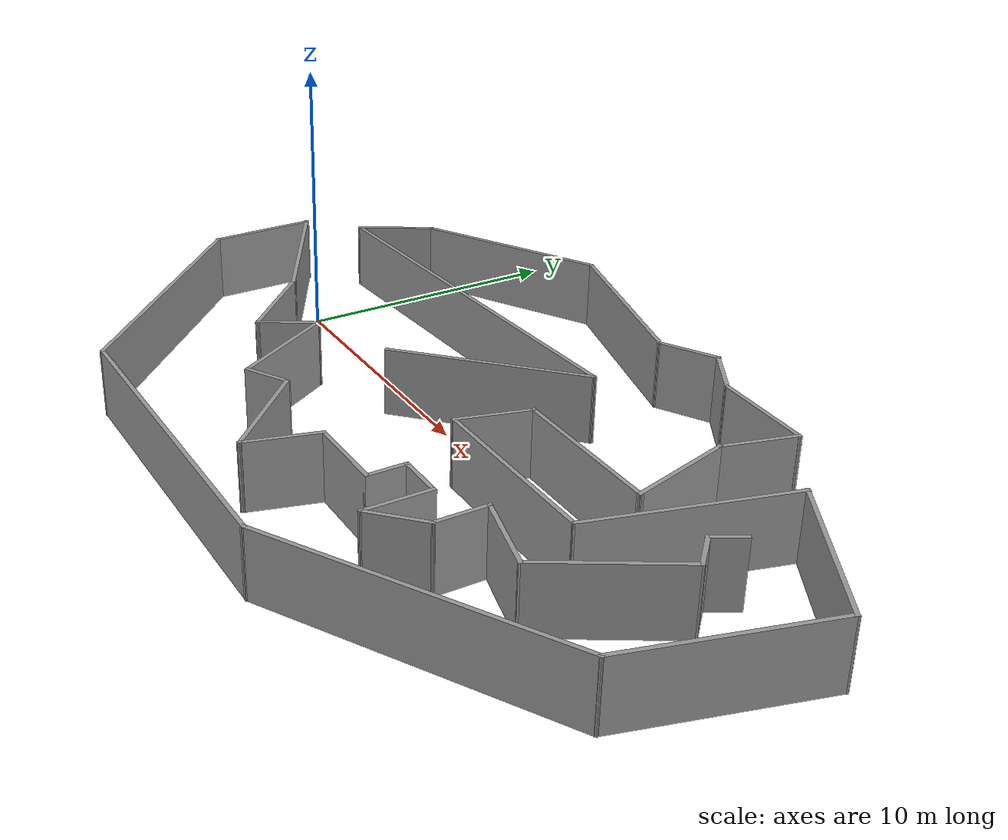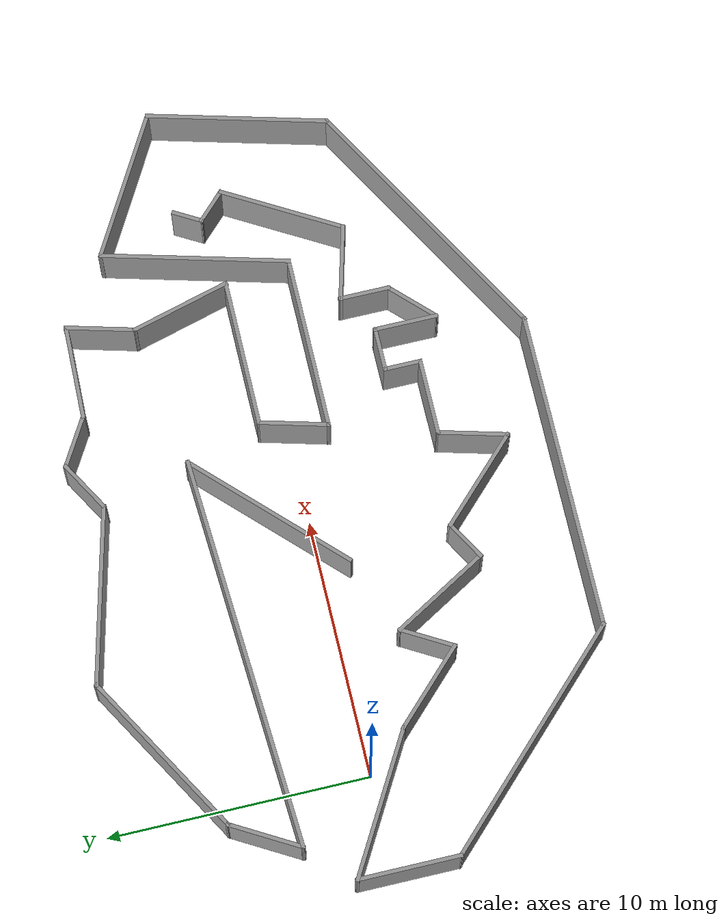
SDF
<?xml version='1.0'?>
<sdf version='1.7'>
  <model name='test1'>
    <pose>11.2206 -0.21406 0 0 -0 0</pose>
    <link name='Wall_10'>
      <collision name='Wall_10_Collision'>
        <geometry>
          <box>
            <size>2.17906 0.15 2.5</size>
          </box>
        </geometry>
        <pose>0 0 1.25 0 -0 0</pose>
      </collision>
      <visual name='Wall_10_Visual'>
        <pose>0 0 1.25 0 -0 0</pose>
        <geometry>
          <box>
            <size>2.17906 0.15 2.5</size>
          </box>
        </geometry>
        <material>
          <script>
            <uri>file://media/materials/scripts/gazebo.material</uri>
            <name>Gazebo/Grey</name>
          </script>
          <ambient>1 1 1 1</ambient>
        </material>
        <meta>
          <layer>0</layer>
        </meta>
      </visual>
      <pose>3.24071 8.14976 0 0 -0 -0.539218</pose>
    </link>
    <link name='Wall_11'>
      <collision name='Wall_11_Collision'>
        <geometry>
          <box>
            <size>3.69325 0.15 2.5</size>
          </box>
        </geometry>
        <pose>0 0 1.25 0 -0 0</pose>
      </collision>
      <visual name='Wall_11_Visual'>
        <pose>0 0 1.25 0 -0 0</pose>
        <geometry>
          <box>
            <size>3.69325 0.15 2.5</size>
          </box>
        </geometry>
        <material>
          <script>
            <uri>file://media/materials/scripts/gazebo.material</uri>
            <name>Gazebo/Grey</name>
          </script>
          <ambient>1 1 1 1</ambient>
        </material>
        <meta>
          <layer>0</layer>
        </meta>
      </visual>
      <pose>5.88208 7.57476 0 0 -0 -0.030527</pose>
    </link>
    <link name='Wall_13'>
      <collision name='Wall_13_Collision'>
        <geometry>
          <box>
            <size>2.75 0.15 2.5</size>
          </box>
        </geometry>
        <pose>0 0 1.25 0 -0 0</pose>
      </collision>
      <visual name='Wall_13_Visual'>
        <pose>0 0 1.25 0 -0 0</pose>
        <geometry>
          <box>
            <size>2.75 0.15 2.5</size>
          </box>
        </geometry>
        <material>
          <script>
            <uri>file://media/materials/scripts/gazebo.material</uri>
            <name>Gazebo/Grey</name>
          </script>
          <ambient>1 1 1 1</ambient>
        </material>
        <meta>
          <layer>0</layer>
        </meta>
      </visual>
      <pose>7.31642 6.26499 0 0 -0 -1.8326</pose>
    </link>
    <link name='Wall_14'>
      <collision name='Wall_14_Collision'>
        <geometry>
          <box>
            <size>4 0.15 2.5</size>
          </box>
        </geometry>
        <pose>0 0 1.25 0 -0 0</pose>
      </collision>
      <visual name='Wall_14_Visual'>
        <pose>0 0 1.25 0 -0 0</pose>
        <geometry>
          <box>
            <size>4 0.15 2.5</size>
          </box>
        </geometry>
        <material>
          <script>
            <uri>file://media/materials/scripts/gazebo.material</uri>
            <name>Gazebo/Grey</name>
          </script>
          <ambient>1 1 1 1</ambient>
        </material>
        <meta>
          <layer>0</layer>
        </meta>
      </visual>
      <pose>7.47818 3.14987 0 0 -0 -1.309</pose>
    </link>
    <link name='Wall_15'>
      <collision name='Wall_15_Collision'>
        <geometry>
          <box>
            <size>5.75 0.15 2.5</size>
          </box>
        </geometry>
        <pose>0 0 1.25 0 -0 0</pose>
      </collision>
      <visual name='Wall_15_Visual'>
        <pose>0 0 1.25 0 -0 0</pose>
        <geometry>
          <box>
            <size>5.75 0.15 2.5</size>
          </box>
        </geometry>
        <material>
          <script>
            <uri>file://media/materials/scripts/gazebo.material</uri>
            <name>Gazebo/Grey</name>
          </script>
          <ambient>1 1 1 1</ambient>
        </material>
        <meta>
          <layer>0</layer>
        </meta>
      </visual>
      <pose>5.1764 1.29047 0 0 -0 3.14159</pose>
    </link>
    <link name='Wall_16'>
      <collision name='Wall_16_Collision'>
        <geometry>
          <box>
            <size>2.75 0.15 2.5</size>
          </box>
        </geometry>
        <pose>0 0 1.25 0 -0 0</pose>
      </collision>
      <visual name='Wall_16_Visual'>
        <pose>0 0 1.25 0 -0 0</pose>
        <geometry>
          <box>
            <size>2.75 0.15 2.5</size>
          </box>
        </geometry>
        <material>
          <script>
            <uri>file://media/materials/scripts/gazebo.material</uri>
            <name>Gazebo/Grey</name>
          </script>
          <ambient>1 1 1 1</ambient>
        </material>
        <meta>
          <layer>0</layer>
        </meta>
      </visual>
      <pose>2.03994 0.034763 0 0 -0 -1.8326</pose>
    </link>
    <link name='Wall_17'>
      <collision name='Wall_17_Collision'>
        <geometry>
          <box>
            <size>6.75 0.15 2.5</size>
          </box>
        </geometry>
        <pose>0 0 1.25 0 -0 0</pose>
      </collision>
      <visual name='Wall_17_Visual'>
        <pose>0 0 1.25 0 -0 0</pose>
        <geometry>
          <box>
            <size>6.75 0.15 2.5</size>
          </box>
        </geometry>
        <material>
          <script>
            <uri>file://media/materials/scripts/gazebo.material</uri>
            <name>Gazebo/Grey</name>
          </script>
          <ambient>1 1 1 1</ambient>
        </material>
        <meta>
          <layer>0</layer>
        </meta>
      </visual>
      <pose>5.00348 -1.22094 0 0 -0 0</pose>
    </link>
    <link name='Wall_18'>
      <collision name='Wall_18_Collision'>
        <geometry>
          <box>
            <size>7.25 0.15 2.5</size>
          </box>
        </geometry>
        <pose>0 0 1.25 0 -0 0</pose>
      </collision>
      <visual name='Wall_18_Visual'>
        <pose>0 0 1.25 0 -0 0</pose>
        <geometry>
          <box>
            <size>7.25 0.15 2.5</size>
          </box>
        </geometry>
        <material>
          <script>
            <uri>file://media/materials/scripts/gazebo.material</uri>
            <name>Gazebo/Grey</name>
          </script>
          <ambient>1 1 1 1</ambient>
        </material>
        <meta>
          <layer>0</layer>
        </meta>
      </visual>
      <pose>9.22228 2.2081 0 0 -0 1.309</pose>
    </link>
    <link name='Wall_19'>
      <collision name='Wall_19_Collision'>
        <geometry>
          <box>
            <size>6 0.15 2.5</size>
          </box>
        </geometry>
        <pose>0 0 1.25 0 -0 0</pose>
      </collision>
      <visual name='Wall_19_Visual'>
        <pose>0 0 1.25 0 -0 0</pose>
        <geometry>
          <box>
            <size>6 0.15 2.5</size>
          </box>
        </geometry>
        <material>
          <script>
            <uri>file://media/materials/scripts/gazebo.material</uri>
            <name>Gazebo/Grey</name>
          </script>
          <ambient>1 1 1 1</ambient>
        </material>
        <meta>
          <layer>0</layer>
        </meta>
      </visual>
      <pose>12.6742 4.17463 0 0 -0 -0.523599</pose>
    </link>
    <link name='Wall_20'>
      <collision name='Wall_20_Collision'>
        <geometry>
          <box>
            <size>7 0.15 2.5</size>
          </box>
        </geometry>
        <pose>0 0 1.25 0 -0 0</pose>
      </collision>
      <visual name='Wall_20_Visual'>
        <pose>0 0 1.25 0 -0 0</pose>
        <geometry>
          <box>
            <size>7 0.15 2.5</size>
          </box>
        </geometry>
        <material>
          <script>
            <uri>file://media/materials/scripts/gazebo.material</uri>
            <name>Gazebo/Grey</name>
          </script>
          <ambient>1 1 1 1</ambient>
        </material>
        <meta>
          <layer>0</layer>
        </meta>
      </visual>
      <pose>14.3209 -0.596163 0 0 -0 -1.8326</pose>
    </link>
    <link name='Wall_21'>
      <collision name='Wall_21_Collision'>
        <geometry>
          <box>
            <size>11 0.15 2.5</size>
          </box>
        </geometry>
        <pose>0 0 1.25 0 -0 0</pose>
      </collision>
      <visual name='Wall_21_Visual'>
        <pose>0 0 1.25 0 -0 0</pose>
        <geometry>
          <box>
            <size>11 0.15 2.5</size>
          </box>
        </geometry>
        <material>
          <script>
            <uri>file://media/materials/scripts/gazebo.material</uri>
            <name>Gazebo/Grey</name>
          </script>
          <ambient>1 1 1 1</ambient>
        </material>
        <meta>
          <layer>0</layer>
        </meta>
      </visual>
      <pose>8.73624 -6.61696 0 0 -0 -2.61799</pose>
    </link>
    <link name='Wall_22'>
      <collision name='Wall_22_Collision'>
        <geometry>
          <box>
            <size>12.25 0.15 2.5</size>
          </box>
        </geometry>
        <pose>0 0 1.25 0 -0 0</pose>
      </collision>
      <visual name='Wall_22_Visual'>
        <pose>0 0 1.25 0 -0 0</pose>
        <geometry>
          <box>
            <size>12.25 0.15 2.5</size>
          </box>
        </geometry>
        <material>
          <script>
            <uri>file://media/materials/scripts/gazebo.material</uri>
            <name>Gazebo/Grey</name>
          </script>
          <ambient>1 1 1 1</ambient>
        </material>
        <meta>
          <layer>0</layer>
        </meta>
      </visual>
      <pose>-2.01195 -9.32946 0 0 -0 3.14159</pose>
    </link>
    <link name='Wall_23'>
      <collision name='Wall_23_Collision'>
        <geometry>
          <box>
            <size>10.25 0.15 2.5</size>
          </box>
        </geometry>
        <pose>0 0 1.25 0 -0 0</pose>
      </collision>
      <visual name='Wall_23_Visual'>
        <pose>0 0 1.25 0 -0 0</pose>
        <geometry>
          <box>
            <size>10.25 0.15 2.5</size>
          </box>
        </geometry>
        <material>
          <script>
            <uri>file://media/materials/scripts/gazebo.material</uri>
            <name>Gazebo/Grey</name>
          </script>
          <ambient>1 1 1 1</ambient>
        </material>
        <meta>
          <layer>0</layer>
        </meta>
      </visual>
      <pose>-11.6328 -5.75857 0 0 -0 2.35619</pose>
    </link>
    <link name='Wall_24'>
      <collision name='Wall_24_Collision'>
        <geometry>
          <box>
            <size>4 0.15 2.5</size>
          </box>
        </geometry>
        <pose>0 0 1.25 0 -0 0</pose>
      </collision>
      <visual name='Wall_24_Visual'>
        <pose>0 0 1.25 0 -0 0</pose>
        <geometry>
          <box>
            <size>4 0.15 2.5</size>
          </box>
        </geometry>
        <material>
          <script>
            <uri>file://media/materials/scripts/gazebo.material</uri>
            <name>Gazebo/Grey</name>
          </script>
          <ambient>1 1 1 1</ambient>
        </material>
        <meta>
          <layer>0</layer>
        </meta>
      </visual>
      <pose>-15.2037 -0.26268 0 0 -0 1.5708</pose>
    </link>
    <link name='Wall_25'>
      <collision name='Wall_25_Collision'>
        <geometry>
          <box>
            <size>6 0.15 2.5</size>
          </box>
        </geometry>
        <pose>0 0 1.25 0 -0 0</pose>
      </collision>
      <visual name='Wall_25_Visual'>
        <pose>0 0 1.25 0 -0 0</pose>
        <geometry>
          <box>
            <size>6 0.15 2.5</size>
          </box>
        </geometry>
        <material>
          <script>
            <uri>file://media/materials/scripts/gazebo.material</uri>
            <name>Gazebo/Grey</name>
          </script>
          <ambient>1 1 1 1</ambient>
        </material>
        <meta>
          <layer>0</layer>
        </meta>
      </visual>
      <pose>-12.6706 0.19982 0 0 -0 -0.523599</pose>
    </link>
    <link name='Wall_26'>
      <collision name='Wall_26_Collision'>
        <geometry>
          <box>
            <size>3.75 0.15 2.5</size>
          </box>
        </geometry>
        <pose>0 0 1.25 0 -0 0</pose>
      </collision>
      <visual name='Wall_26_Visual'>
        <pose>0 0 1.25 0 -0 0</pose>
        <geometry>
          <box>
            <size>3.75 0.15 2.5</size>
          </box>
        </geometry>
        <material>
          <script>
            <uri>file://media/materials/scripts/gazebo.material</uri>
            <name>Gazebo/Grey</name>
          </script>
          <ambient>1 1 1 1</ambient>
        </material>
        <meta>
          <layer>0</layer>
        </meta>
      </visual>
      <pose>-8.86468 -2.53547 0 0 -0 -0.785398</pose>
    </link>
    <link name='Wall_27'>
      <collision name='Wall_27_Collision'>
        <geometry>
          <box>
            <size>2.25 0.15 2.5</size>
          </box>
        </geometry>
        <pose>0 0 1.25 0 -0 0</pose>
      </collision>
      <visual name='Wall_27_Visual'>
        <pose>0 0 1.25 0 -0 0</pose>
        <geometry>
          <box>
            <size>2.25 0.15 2.5</size>
          </box>
        </geometry>
        <material>
          <script>
            <uri>file://media/materials/scripts/gazebo.material</uri>
            <name>Gazebo/Grey</name>
          </script>
          <ambient>1 1 1 1</ambient>
        </material>
        <meta>
          <layer>0</layer>
        </meta>
      </visual>
      <pose>-7.06689 -2.89894 0 0 -0 1.0472</pose>
    </link>
    <link name='Wall_28'>
      <collision name='Wall_28_Collision'>
        <geometry>
          <box>
            <size>4.25 0.15 2.5</size>
          </box>
        </geometry>
        <pose>0 0 1.25 0 -0 0</pose>
      </collision>
      <visual name='Wall_28_Visual'>
        <pose>0 0 1.25 0 -0 0</pose>
        <geometry>
          <box>
            <size>4.25 0.15 2.5</size>
          </box>
        </geometry>
        <material>
          <script>
            <uri>file://media/materials/scripts/gazebo.material</uri>
            <name>Gazebo/Grey</name>
          </script>
          <ambient>1 1 1 1</ambient>
        </material>
        <meta>
          <layer>0</layer>
        </meta>
      </visual>
      <pose>-5.51689 -3.76496 0 0 -0 -1.0472</pose>
    </link>
    <link name='Wall_29'>
      <collision name='Wall_29_Collision'>
        <geometry>
          <box>
            <size>1.75 0.15 2.5</size>
          </box>
        </geometry>
        <pose>0 0 1.25 0 -0 0</pose>
      </collision>
      <visual name='Wall_29_Visual'>
        <pose>0 0 1.25 0 -0 0</pose>
        <geometry>
          <box>
            <size>1.75 0.15 2.5</size>
          </box>
        </geometry>
        <material>
          <script>
            <uri>file://media/materials/scripts/gazebo.material</uri>
            <name>Gazebo/Grey</name>
          </script>
          <ambient>1 1 1 1</ambient>
        </material>
        <meta>
          <layer>0</layer>
        </meta>
      </visual>
      <pose>-3.79907 -5.14032 0 0 -0 0.523599</pose>
    </link>
    <link name='Wall_30'>
      <collision name='Wall_30_Collision'>
        <geometry>
          <box>
            <size>4.25 0.15 2.5</size>
          </box>
        </geometry>
        <pose>0 0 1.25 0 -0 0</pose>
      </collision>
      <visual name='Wall_30_Visual'>
        <pose>0 0 1.25 0 -0 0</pose>
        <geometry>
          <box>
            <size>4.25 0.15 2.5</size>
          </box>
        </geometry>
        <material>
          <script>
            <uri>file://media/materials/scripts/gazebo.material</uri>
            <name>Gazebo/Grey</name>
          </script>
          <ambient>1 1 1 1</ambient>
        </material>
        <meta>
          <layer>0</layer>
        </meta>
      </visual>
      <pose>-1.65668 -6.18989 0 0 -0 -0.785398</pose>
    </link>
    <link name='Wall_31'>
      <collision name='Wall_31_Collision'>
        <geometry>
          <box>
            <size>2.75 0.15 2.5</size>
          </box>
        </geometry>
        <pose>0 0 1.25 0 -0 0</pose>
      </collision>
      <visual name='Wall_31_Visual'>
        <pose>0 0 1.25 0 -0 0</pose>
        <geometry>
          <box>
            <size>2.75 0.15 2.5</size>
          </box>
        </geometry>
        <material>
          <script>
            <uri>file://media/materials/scripts/gazebo.material</uri>
            <name>Gazebo/Grey</name>
          </script>
          <ambient>1 1 1 1</ambient>
        </material>
        <meta>
          <layer>0</layer>
        </meta>
      </visual>
      <pose>0.129352 -6.38375 0 0 -0 1.309</pose>
    </link>
    <link name='Wall_32'>
      <collision name='Wall_32_Collision'>
        <geometry>
          <box>
            <size>3 0.15 2.5</size>
          </box>
        </geometry>
        <pose>0 0 1.25 0 -0 0</pose>
      </collision>
      <visual name='Wall_32_Visual'>
        <pose>0 0 1.25 0 -0 0</pose>
        <geometry>
          <box>
            <size>3 0.15 2.5</size>
          </box>
        </geometry>
        <material>
          <script>
            <uri>file://media/materials/scripts/gazebo.material</uri>
            <name>Gazebo/Grey</name>
          </script>
          <ambient>1 1 1 1</ambient>
        </material>
        <meta>
          <layer>0</layer>
        </meta>
      </visual>
      <pose>1.89082 -5.12805 0 0 -0 0</pose>
    </link>
    <link name='Wall_33'>
      <collision name='Wall_33_Collision'>
        <geometry>
          <box>
            <size>1.5 0.15 2.5</size>
          </box>
        </geometry>
        <pose>0 0 1.25 0 -0 0</pose>
      </collision>
      <visual name='Wall_33_Visual'>
        <pose>0 0 1.25 0 -0 0</pose>
        <geometry>
          <box>
            <size>1.5 0.15 2.5</size>
          </box>
        </geometry>
        <material>
          <script>
            <uri>file://media/materials/scripts/gazebo.material</uri>
            <name>Gazebo/Grey</name>
          </script>
          <ambient>1 1 1 1</ambient>
        </material>
        <meta>
          <layer>0</layer>
        </meta>
      </visual>
      <pose>3.31582 -4.45305 0 0 -0 1.5708</pose>
    </link>
    <link name='Wall_34'>
      <collision name='Wall_34_Collision'>
        <geometry>
          <box>
            <size>1.75 0.15 2.5</size>
          </box>
        </geometry>
        <pose>0 0 1.25 0 -0 0</pose>
      </collision>
      <visual name='Wall_34_Visual'>
        <pose>0 0 1.25 0 -0 0</pose>
        <geometry>
          <box>
            <size>1.75 0.15 2.5</size>
          </box>
        </geometry>
        <material>
          <script>
            <uri>file://media/materials/scripts/gazebo.material</uri>
            <name>Gazebo/Grey</name>
          </script>
          <ambient>1 1 1 1</ambient>
        </material>
        <meta>
          <layer>0</layer>
        </meta>
      </visual>
      <pose>4.11582 -3.77805 0 0 -0 0</pose>
    </link>
    <link name='Wall_35'>
      <collision name='Wall_35_Collision'>
        <geometry>
          <box>
            <size>2.5 0.15 2.5</size>
          </box>
        </geometry>
        <pose>0 0 1.25 0 -0 0</pose>
      </collision>
      <visual name='Wall_35_Visual'>
        <pose>0 0 1.25 0 -0 0</pose>
        <geometry>
          <box>
            <size>2.5 0.15 2.5</size>
          </box>
        </geometry>
        <material>
          <script>
            <uri>file://media/materials/scripts/gazebo.material</uri>
            <name>Gazebo/Grey</name>
          </script>
          <ambient>1 1 1 1</ambient>
        </material>
        <meta>
          <layer>0</layer>
        </meta>
      </visual>
      <pose>4.91582 -4.95305 0 0 -0 -1.5708</pose>
    </link>
    <link name='Wall_36'>
      <collision name='Wall_36_Collision'>
        <geometry>
          <box>
            <size>2.25 0.15 2.5</size>
          </box>
        </geometry>
        <pose>0 0 1.25 0 -0 0</pose>
      </collision>
      <visual name='Wall_36_Visual'>
        <pose>0 0 1.25 0 -0 0</pose>
        <geometry>
          <box>
            <size>2.25 0.15 2.5</size>
          </box>
        </geometry>
        <material>
          <script>
            <uri>file://media/materials/scripts/gazebo.material</uri>
            <name>Gazebo/Grey</name>
          </script>
          <ambient>1 1 1 1</ambient>
        </material>
        <meta>
          <layer>0</layer>
        </meta>
      </visual>
      <pose>5.65828 -5.38558 0 0 -0 0.785398</pose>
    </link>
    <link name='Wall_37'>
      <collision name='Wall_37_Collision'>
        <geometry>
          <box>
            <size>2 0.15 2.5</size>
          </box>
        </geometry>
        <pose>0 0 1.25 0 -0 0</pose>
      </collision>
      <visual name='Wall_37_Visual'>
        <pose>0 0 1.25 0 -0 0</pose>
        <geometry>
          <box>
            <size>2 0.15 2.5</size>
          </box>
        </geometry>
        <material>
          <script>
            <uri>file://media/materials/scripts/gazebo.material</uri>
            <name>Gazebo/Grey</name>
          </script>
          <ambient>1 1 1 1</ambient>
        </material>
        <meta>
          <layer>0</layer>
        </meta>
      </visual>
      <pose>6.40074 -3.71812 0 0 -0 1.5708</pose>
    </link>
    <link name='Wall_38'>
      <collision name='Wall_38_Collision'>
        <geometry>
          <box>
            <size>3 0.15 2.5</size>
          </box>
        </geometry>
        <pose>0 0 1.25 0 -0 0</pose>
      </collision>
      <visual name='Wall_38_Visual'>
        <pose>0 0 1.25 0 -0 0</pose>
        <geometry>
          <box>
            <size>3 0.15 2.5</size>
          </box>
        </geometry>
        <material>
          <script>
            <uri>file://media/materials/scripts/gazebo.material</uri>
            <name>Gazebo/Grey</name>
          </script>
          <ambient>1 1 1 1</ambient>
        </material>
        <meta>
          <layer>0</layer>
        </meta>
      </visual>
      <pose>7.77719 -3.16194 0 0 -0 -0.261799</pose>
    </link>
    <link name='Wall_39'>
      <collision name='Wall_39_Collision'>
        <geometry>
          <box>
            <size>5 0.15 2.5</size>
          </box>
        </geometry>
        <pose>0 0 1.25 0 -0 0</pose>
      </collision>
      <visual name='Wall_39_Visual'>
        <pose>0 0 1.25 0 -0 0</pose>
        <geometry>
          <box>
            <size>5 0.15 2.5</size>
          </box>
        </geometry>
        <material>
          <script>
            <uri>file://media/materials/scripts/gazebo.material</uri>
            <name>Gazebo/Grey</name>
          </script>
          <ambient>1 1 1 1</ambient>
        </material>
        <meta>
          <layer>0</layer>
        </meta>
      </visual>
      <pose>10.3661 -1.43064 0 0 -0 1.0472</pose>
    </link>
    <link name='Wall_4'>
      <collision name='Wall_4_Collision'>
        <geometry>
          <box>
            <size>7.25 0.15 2.5</size>
          </box>
        </geometry>
        <pose>0 0 1.25 0 -0 0</pose>
      </collision>
      <visual name='Wall_4_Visual'>
        <pose>0 0 1.25 0 -0 0</pose>
        <geometry>
          <box>
            <size>7.25 0.15 2.5</size>
          </box>
        </geometry>
        <material>
          <script>
            <uri>file://media/materials/scripts/gazebo.material</uri>
            <name>Gazebo/Grey</name>
          </script>
          <ambient>1 1 1 1</ambient>
        </material>
        <meta>
          <layer>0</layer>
        </meta>
      </visual>
      <pose>-1.02895 1.70074 0 0 -0 0.785398</pose>
    </link>
    <link name='Wall_40'>
      <collision name='Wall_40_Collision'>
        <geometry>
          <box>
            <size>1.5 0.15 2.5</size>
          </box>
        </geometry>
        <pose>0 0 1.25 0 -0 0</pose>
      </collision>
      <visual name='Wall_40_Visual'>
        <pose>0 0 1.25 0 -0 0</pose>
        <geometry>
          <box>
            <size>1.5 0.15 2.5</size>
          </box>
        </geometry>
        <material>
          <script>
            <uri>file://media/materials/scripts/gazebo.material</uri>
            <name>Gazebo/Grey</name>
          </script>
          <ambient>1 1 1 1</ambient>
        </material>
        <meta>
          <layer>0</layer>
        </meta>
      </visual>
      <pose>11.1013 1.14676 0 0 -0 2.35619</pose>
    </link>
    <link name='Wall_41'>
      <collision name='Wall_41_Collision'>
        <geometry>
          <box>
            <size>1.25 0.15 2.5</size>
          </box>
        </geometry>
        <pose>0 0 1.25 0 -0 0</pose>
      </collision>
      <visual name='Wall_41_Visual'>
        <pose>0 0 1.25 0 -0 0</pose>
        <geometry>
          <box>
            <size>1.25 0.15 2.5</size>
          </box>
        </geometry>
        <material>
          <script>
            <uri>file://media/materials/scripts/gazebo.material</uri>
            <name>Gazebo/Grey</name>
          </script>
          <ambient>1 1 1 1</ambient>
        </material>
        <meta>
          <layer>0</layer>
        </meta>
      </visual>
      <pose>10.899 2.10038 0 0 -0 1.0472</pose>
    </link>
    <link name='Wall_5'>
      <collision name='Wall_5_Collision'>
        <geometry>
          <box>
            <size>15.2395 0.15 2.5</size>
          </box>
        </geometry>
        <pose>0 0 1.25 0 -0 0</pose>
      </collision>
      <visual name='Wall_5_Visual'>
        <pose>0 0 1.25 0 -0 0</pose>
        <geometry>
          <box>
            <size>15.2395 0.15 2.5</size>
          </box>
        </geometry>
        <material>
          <script>
            <uri>file://media/materials/scripts/gazebo.material</uri>
            <name>Gazebo/Grey</name>
          </script>
          <ambient>1 1 1 1</ambient>
        </material>
        <meta>
          <layer>0</layer>
        </meta>
      </visual>
      <pose>-6.05016 3.76294 0 0 -0 -3.08217</pose>
    </link>
    <link name='Wall_6'>
      <collision name='Wall_6_Collision'>
        <geometry>
          <box>
            <size>3 0.15 2.5</size>
          </box>
        </geometry>
        <pose>0 0 1.25 0 -0 0</pose>
      </collision>
      <visual name='Wall_6_Visual'>
        <pose>0 0 1.25 0 -0 0</pose>
        <geometry>
          <box>
            <size>3 0.15 2.5</size>
          </box>
        </geometry>
        <material>
          <script>
            <uri>file://media/materials/scripts/gazebo.material</uri>
            <name>Gazebo/Grey</name>
          </script>
          <ambient>1 1 1 1</ambient>
        </material>
        <meta>
          <layer>0</layer>
        </meta>
      </visual>
      <pose>-12.8691 4.54899 0 0 -0 1.0472</pose>
    </link>
    <link name='Wall_7'>
      <collision name='Wall_7_Collision'>
        <geometry>
          <box>
            <size>7.25 0.15 2.5</size>
          </box>
        </geometry>
        <pose>0 0 1.25 0 -0 0</pose>
      </collision>
      <visual name='Wall_7_Visual'>
        <pose>0 0 1.25 0 -0 0</pose>
        <geometry>
          <box>
            <size>7.25 0.15 2.5</size>
          </box>
        </geometry>
        <material>
          <script>
            <uri>file://media/materials/scripts/gazebo.material</uri>
            <name>Gazebo/Grey</name>
          </script>
          <ambient>1 1 1 1</ambient>
        </material>
        <meta>
          <layer>0</layer>
        </meta>
      </visual>
      <pose>-9.08221 7.55807 0 0 -0 0.523599</pose>
    </link>
    <link name='Wall_8'>
      <collision name='Wall_8_Collision'>
        <geometry>
          <box>
            <size>6.92913 0.15 2.5</size>
          </box>
        </geometry>
        <pose>0 0 1.25 0 -0 0</pose>
      </collision>
      <visual name='Wall_8_Visual'>
        <pose>0 0 1.25 0 -0 0</pose>
        <geometry>
          <box>
            <size>6.92913 0.15 2.5</size>
          </box>
        </geometry>
        <material>
          <script>
            <uri>file://media/materials/scripts/gazebo.material</uri>
            <name>Gazebo/Grey</name>
          </script>
          <ambient>1 1 1 1</ambient>
        </material>
        <meta>
          <layer>0</layer>
        </meta>
      </visual>
      <pose>-2.72817 8.47688 0 0 -0 -0.255363</pose>
    </link>
    <link name='Wall_9'>
      <collision name='Wall_9_Collision'>
        <geometry>
          <box>
            <size>2.25 0.15 2.5</size>
          </box>
        </geometry>
        <pose>0 0 1.25 0 -0 0</pose>
      </collision>
      <visual name='Wall_9_Visual'>
        <pose>0 0 1.25 0 -0 0</pose>
        <geometry>
          <box>
            <size>2.25 0.15 2.5</size>
          </box>
        </geometry>
        <material>
          <script>
            <uri>file://media/materials/scripts/gazebo.material</uri>
            <name>Gazebo/Grey</name>
          </script>
          <ambient>1 1 1 1</ambient>
        </material>
        <meta>
          <layer>0</layer>
        </meta>
      </visual>
      <pose>1.4608 8.14569 0 0 -0 0.523599</pose>
    </link>
    <static>1</static>
  </model>
</sdf>
